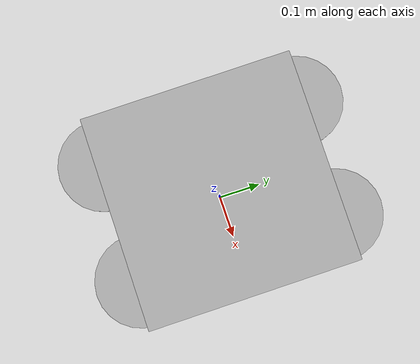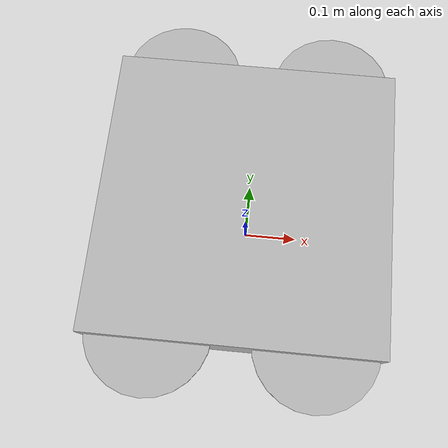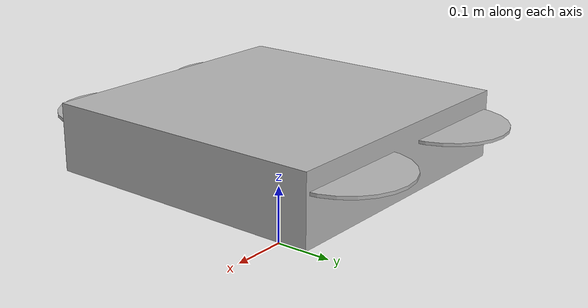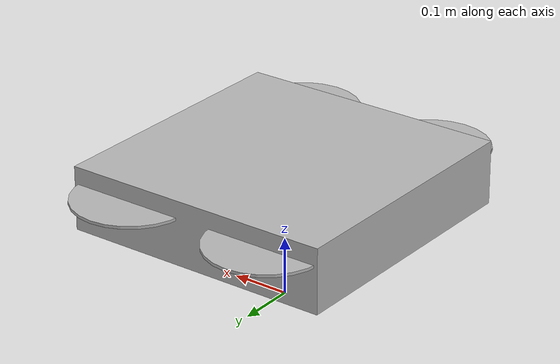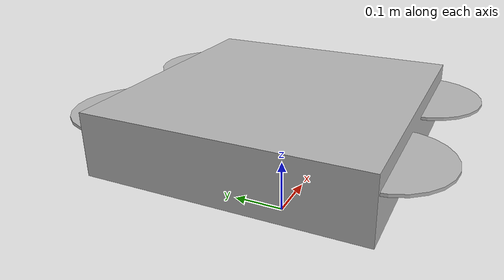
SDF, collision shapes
<?xml version="1.0" ?>
<sdf version="1.6">
  <model name="iris_with_camera">
    <pose>0 0 0.194923 0 0 0</pose>

    <!-- ══════════════════════════════════════════════════════════════
         AIRFRAME
    ══════════════════════════════════════════════════════════════ -->
    <link name="base_link">
      <inertial>
        <mass>1.5</mass>
        <inertia>
          <ixx>0.029125</ixx><ixy>0</ixy><ixz>0</ixz>
          <iyy>0.029125</iyy><iyz>0</iyz>
          <izz>0.055225</izz>
        </inertia>
      </inertial>

      <!-- Fuselage -->
      <visual name="iris_visual">
        <geometry>
          <mesh>
            <uri>model://iris/meshes/iris.dae</uri>
          </mesh>
        </geometry>
      </visual>
      <collision name="iris_collision">
        <geometry>
          <box><size>0.47 0.47 0.11</size></box>
        </geometry>
      </collision>

      <!-- ── Camera sensor (forward-facing, mounted under nose) ──── -->
      <sensor name="front_camera" type="camera">
      <pose>0.1 0 -0.05 0 0 0</pose>
      <topic>front_camera</topic>
      <update_rate>30</update_rate>
      <always_on>true</always_on>
      <visualize>true</visualize>
      <camera>
        <horizontal_fov>1.3962634</horizontal_fov>  <!-- ~80 degrees -->
        <image>
          <width>640</width>
          <height>480</height>
          <format>R8G8B8</format>
        </image>
        <clip>
          <near>0.1</near>
          <far>100</far>
        </clip>
        <noise>
          <type>gaussian</type>
          <mean>0.0</mean>
          <stddev>0.005</stddev>
        </noise>
        <optical_frame_id>camera_link_optical</optical_frame_id>
      </camera>
    </sensor>
    </link>

    <!-- motor_0: front right -->
    <link name="rotor_0">
      <pose>0.13 -0.22 0.023 0 0 0</pose>
      <inertial>
        <mass>0.025</mass>
        <inertia><ixx>9.75e-7</ixx><ixy>0</ixy><ixz>0</ixz>
                  <iyy>0.000166704</iyy><iyz>0</iyz><izz>0.000167604</izz></inertia>
      </inertial>
      <visual name="rotor_0_visual">
        <geometry>
          <mesh><uri>model://iris/meshes/iris_prop_ccw.dae</uri></mesh>
        </geometry>
        <material><script><n>Gazebo/Blue</n></script></material>
      </visual>
      <collision name="rotor_0_collision">
        <geometry><cylinder><length>0.005</length><radius>0.1</radius></cylinder></geometry>
      </collision>
    </link>
    <joint name="rotor_0_joint" type="revolute">
      <parent>base_link</parent><child>rotor_0</child>
      <axis><xyz>0 0 1</xyz><limit><lower>-1e16</lower><upper>1e16</upper></limit></axis>
    </joint>

    <!-- motor_1: back left -->
    <link name="rotor_1">
      <pose>-0.13 0.22 0.023 0 0 0</pose>
      <inertial>
        <mass>0.025</mass>
        <inertia><ixx>9.75e-7</ixx><ixy>0</ixy><ixz>0</ixz>
                  <iyy>0.000166704</iyy><iyz>0</iyz><izz>0.000167604</izz></inertia>
      </inertial>
      <visual name="rotor_1_visual">
        <geometry>
          <mesh><uri>model://iris/meshes/iris_prop_ccw.dae</uri></mesh>
        </geometry>
        <material><script><n>Gazebo/DarkGrey</n></script></material>
      </visual>
      <collision name="rotor_1_collision">
        <geometry><cylinder><length>0.005</length><radius>0.1</radius></cylinder></geometry>
      </collision>
    </link>
    <joint name="rotor_1_joint" type="revolute">
      <parent>base_link</parent><child>rotor_1</child>
      <axis><xyz>0 0 1</xyz><limit><lower>-1e16</lower><upper>1e16</upper></limit></axis>
    </joint>

    <!-- motor_2: front left -->
    <link name="rotor_2">
      <pose>0.13 0.22 0.023 0 0 0</pose>
      <inertial>
        <mass>0.025</mass>
        <inertia><ixx>9.75e-7</ixx><ixy>0</ixy><ixz>0</ixz>
                  <iyy>0.000166704</iyy><iyz>0</iyz><izz>0.000167604</izz></inertia>
      </inertial>
      <visual name="rotor_2_visual">
        <geometry>
          <mesh><uri>model://iris/meshes/iris_prop_cw.dae</uri></mesh>
        </geometry>
        <material><script><n>Gazebo/Blue</n></script></material>
      </visual>
      <collision name="rotor_2_collision">
        <geometry><cylinder><length>0.005</length><radius>0.1</radius></cylinder></geometry>
      </collision>
    </link>
    <joint name="rotor_2_joint" type="revolute">
      <parent>base_link</parent><child>rotor_2</child>
      <axis><xyz>0 0 1</xyz><limit><lower>-1e16</lower><upper>1e16</upper></limit></axis>
    </joint>

    <!-- motor_3: back right -->
    <link name="rotor_3">
      <pose>-0.13 -0.22 0.023 0 0 0</pose>
      <inertial>
        <mass>0.025</mass>
        <inertia><ixx>9.75e-7</ixx><ixy>0</ixy><ixz>0</ixz>
                  <iyy>0.000166704</iyy><iyz>0</iyz><izz>0.000167604</izz></inertia>
      </inertial>
      <visual name="rotor_3_visual">
        <geometry>
          <mesh><uri>model://iris/meshes/iris_prop_cw.dae</uri></mesh>
        </geometry>
        <material><script><n>Gazebo/DarkGrey</n></script></material>
      </visual>
      <collision name="rotor_3_collision">
        <geometry><cylinder><length>0.005</length><radius>0.1</radius></cylinder></geometry>
      </collision>
    </link>
    <joint name="rotor_3_joint" type="revolute">
      <parent>base_link</parent><child>rotor_3</child>
      <axis><xyz>0 0 1</xyz><limit><lower>-1e16</lower><upper>1e16</upper></limit></axis>
    </joint>

    <plugin name="ardupilot_plugin" filename="libArduPilotPlugin.so">
      <fdm_addr>127.0.0.1</fdm_addr>
      <fdm_port_in>9002</fdm_port_in>
      <fdm_port_out>9003</fdm_port_out>
      <connectionTimeoutMaxCount>5</connectionTimeoutMaxCount>
      <lock_step>1</lock_step>
      <modelXYZToNED>0 0 0 3.141593 0 0</modelXYZToNED>

      <!-- Motor mapping: channel → joint, direction, max RPM -->
      <control channel="0">
        <jointName>rotor_0_joint</jointName>
        <useForce>1</useForce>
        <multiplier>838</multiplier>
        <offset>-0.5</offset>
        <servo_min>1000</servo_min><servo_max>2000</servo_max>
        <type>VELOCITY</type>
        <p_gain>0.20</p_gain><i_gain>0</i_gain><d_gain>0</d_gain>
        <i_max>0</i_max><i_min>0</i_min><cmd_max>2.5</cmd_max><cmd_min>-2.5</cmd_min>
      </control>
      <control channel="1">
        <jointName>rotor_1_joint</jointName>
        <useForce>1</useForce>
        <multiplier>838</multiplier>
        <offset>-0.5</offset>
        <servo_min>1000</servo_min><servo_max>2000</servo_max>
        <type>VELOCITY</type>
        <p_gain>0.20</p_gain><i_gain>0</i_gain><d_gain>0</d_gain>
        <i_max>0</i_max><i_min>0</i_min><cmd_max>2.5</cmd_max><cmd_min>-2.5</cmd_min>
      </control>
      <control channel="2">
        <jointName>rotor_2_joint</jointName>
        <useForce>1</useForce>
        <multiplier>-838</multiplier>
        <offset>-0.5</offset>
        <servo_min>1000</servo_min><servo_max>2000</servo_max>
        <type>VELOCITY</type>
        <p_gain>0.20</p_gain><i_gain>0</i_gain><d_gain>0</d_gain>
        <i_max>0</i_max><i_min>0</i_min><cmd_max>2.5</cmd_max><cmd_min>-2.5</cmd_min>
      </control>
      <control channel="3">
        <jointName>rotor_3_joint</jointName>
        <useForce>1</useForce>
        <multiplier>-838</multiplier>
        <offset>-0.5</offset>
        <servo_min>1000</servo_min><servo_max>2000</servo_max>
        <type>VELOCITY</type>
        <p_gain>0.20</p_gain><i_gain>0</i_gain><d_gain>0</d_gain>
        <i_max>0</i_max><i_min>0</i_min><cmd_max>2.5</cmd_max><cmd_min>-2.5</cmd_min>
      </control>
    </plugin>

  </model>
</sdf>
